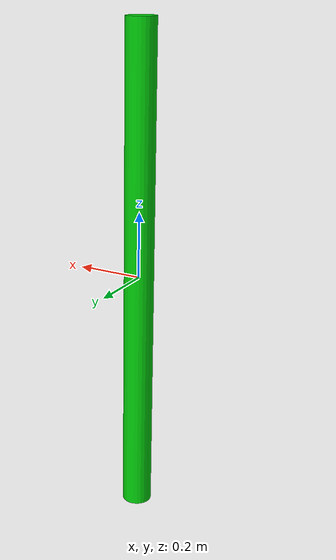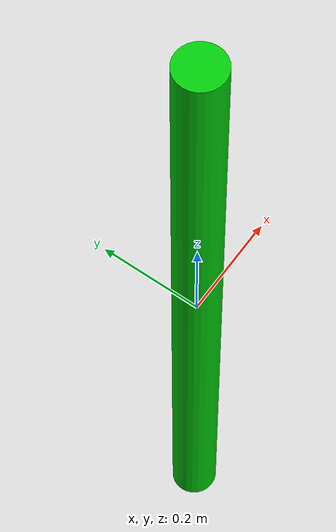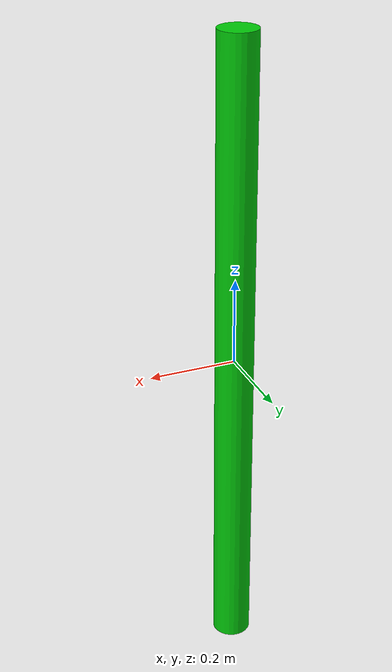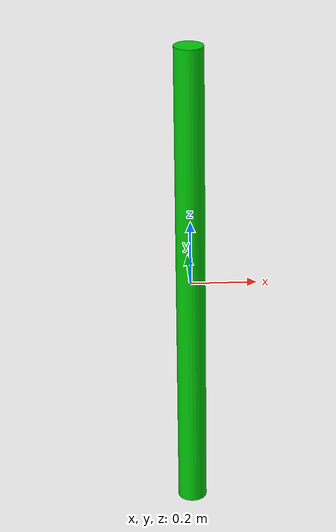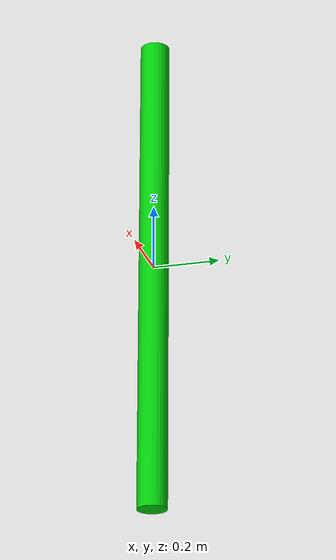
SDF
<?xml version="1.0" ?>
<sdf version="1.5">
  <model name="LaViRIA_cylinder_S">
    <link name="link">
      <inertial>
        <pose>0 0 0 0 0 0</pose>
        <mass>22.14</mass>
        <inertia>
          <ixx>4.1616</ixx>
          <iyy>4.1616</iyy>
          <izz>0.0216</izz>
          <ixy>0</ixy>
          <ixz>0</ixz>
        </inertia>
      </inertial>
      <collision name="collision">
        <geometry>
          <mesh>
            <uri>model://LaViRIA_cylinder_S/meshes/LaViRIA_cylinder_S.dae</uri>
          </mesh>
        </geometry>
      </collision>
      <visual name="visual">
        <geometry>
          <mesh>
            <uri>model://LaViRIA_cylinder_S/meshes/LaViRIA_cylinder_S.dae</uri>
          </mesh>
        </geometry>
        <material>
          <ambient>0.009 .799 0.04 1.0</ambient>
          <diffuse>0.009 .799 0.04 1.0</diffuse>
          <specular>0.009 .799 0.04 1.0</specular>
          <emissive>0.009 .799 0.04 1.0</emissive>
        </material>
      </visual>
    </link>
  </model>
</sdf>
